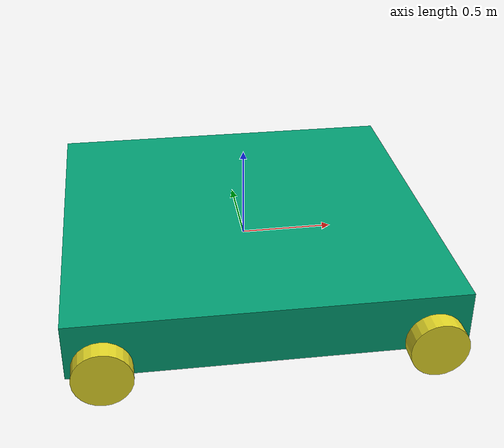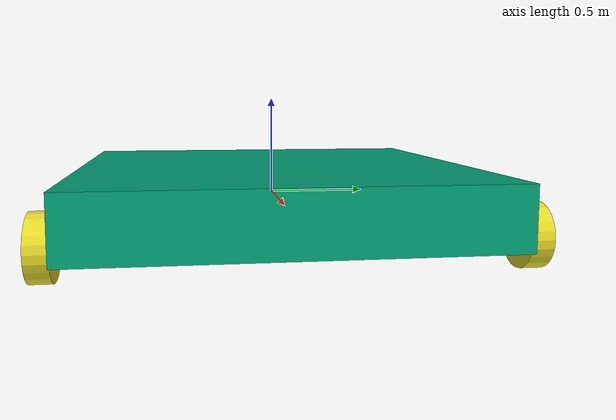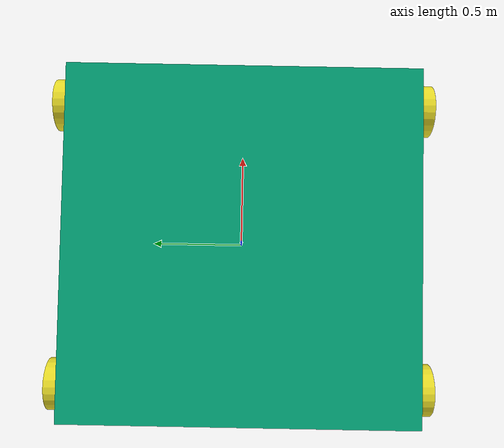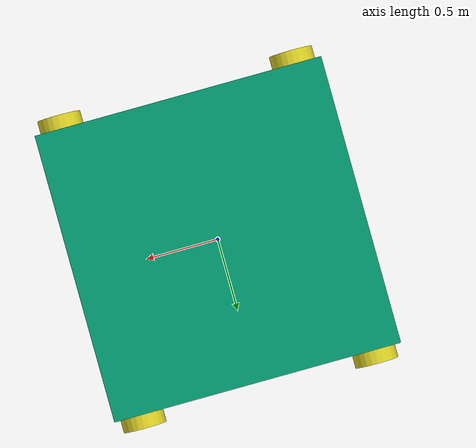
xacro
<?xml version="1.0"?>

<robot name="differential_drive_robot" xmlns:xacro="http://www.ros.org/wiki/xacro">

<!-- Body dimensions -->
<xacro:property name="body_link_x_dim" value="2.0"/>
<xacro:property name="body_link_y_dim" value="2.0"/>
<xacro:property name="body_link_z_dim" value="0.3"/>

<!-- Wheel dimensions -->
<xacro:property name="wheel_link_radius" value="0.15"/>
<xacro:property name="wheel_link_length" value="0.1"/>
<xacro:property name="wheel_link_z_location" value="-0.1"/>

<!-- Material Density -->
<xacro:property name="body_density" value="20.0"/>
<xacro:property name="wheel_density" value="20.0"/>

<!-- Pi Constant -->
<xacro:property name="pi_const" value="3.141592265"/>

<!-- Robot body and wheel mass -->
<xacro:property name="body_mass" value="${body_density*body_link_x_dim*body_link_y_dim*body_link_z_dim}"/>
<xacro:property name="wheel_mass" value="${wheel_density*pi_const*wheel_link_radius*wheel_link_radius*wheel_link_length}"/>

<!-- Moments of inertial of the wheel -->
<xacro:property name="Iz_wheel" value="${0.5*wheel_mass*wheel_link_radius*wheel_link_radius}"/>
<xacro:property name="I_wheel" value="${(1.0/12.0)*wheel_mass*(3*wheel_link_radius*wheel_link_radius+wheel_link_length*wheel_link_length)}"/>

<!-- macros -->

<xacro:macro name="inertia_wheel">
    <inertial>
        <origin rpy="0 0 0" xyz="0 0 0"/>
        <mass value="${wheel_mass}"/>
        <inertia ixx="${I_wheel}" ixy="0.0" ixz="0.0" iyy="${I_wheel}" iyz="0" izz="${Iz_wheel}"/>

    </inertial>

</xacro:macro>

<xacro:include filename="$(find mobile_robot)/model/robot.gazebo"/>

<!-- DEFINING LINKS AND JOINTS -->

<link name="base_footprint">
</link>
<joint name="base_joint" type="fixed">
    <parent link="base_footprint"/>
    <child link="base_link"/>
</joint>

<link name="base_link">
</link>

<joint name = "chassis_joint" type="fixed">
    <parent link="base_link"/>
    <child link="chassis_link"/>
</joint>

<!-- Body Link of Robot -->

<link name="chassis_link">
    <visual>
        <geometry>
            <box size="${body_link_x_dim} ${body_link_y_dim} ${body_link_z_dim}" />
        </geometry>
        <origin rpy="0 0 0" xyz="0 0 0"/>
    </visual>

    <collision>
        <geometry>
            <box size="${body_link_x_dim} ${body_link_y_dim} ${body_link_z_dim}" />
        </geometry>
        <origin rpy="0 0 0" xyz="0 0 0"/>

    </collision>

    <inertial>
        <origin rpy="0 0 0" xyz="0 0 0"/>
        <mass value="${body_mass}"/>
        <inertia
        ixx="${(1/12)*body_mass*(body_link_y_dim+body_link_z_dim*body_link_z_dim)}"
        ixy="0"
        ixz="0"
        iyy="${(1/12)*body_mass*(body_link_x_dim*body_link_x_dim+body_link_z_dim*body_link_z_dim)}"
        iyz="0"
        izz="${(1/12)*body_mass*(body_link_y_dim*body_link_y_dim+body_link_x_dim*body_link_x_dim)}"/>
    </inertial>
</link>

<!-- Back Right Wheel of Robot & Joint -->

<joint name="wheel1_joint" type="continuous">
    <parent link="base_link"/>
    <child link="wheel1_link"/>
    <origin xyz="${-body_link_x_dim/2+1.2*wheel_link_radius} ${-body_link_y_dim/2-wheel_link_length/2} ${wheel_link_z_location}" rpy="0 0 0"/>
    <axis xyz="0 1 0"/>
    <limit effort="1000" velocity="1000"/>
    <dynamics damping="1.0" friction="1.0"/>
</joint>

<link name="wheel1_link">
    <visual>
        <origin rpy="1.570795 0 0" xyz="0 0 0"/>
        <geometry>
            <cylinder length="${wheel_link_length}" radius="${wheel_link_radius}"/>
        </geometry>
    </visual>

    <collision>
        <origin rpy="1.570795 0 0" xyz="0 0 0"/>
        <geometry>
            <cylinder length="${wheel_link_length}" radius="${wheel_link_radius}"/>
        </geometry>
    </collision>

    <xacro:inertia_wheel />
</link>

<!-- Back Left Wheel of Robot & Joint -->

<joint name="wheel2_joint" type="continuous">
    <parent link="base_link"/>
    <child link="wheel2_link"/>
    <origin xyz="${-body_link_x_dim/2+1.2*wheel_link_radius} ${body_link_y_dim/2+wheel_link_length/2} ${wheel_link_z_location}" rpy="0 0 0"/>
    <axis xyz="0 1 0"/>
    <limit effort="1000" velocity="1000"/>
    <dynamics damping="1.0" friction="1.0"/>
</joint>

<link name="wheel2_link">
    <visual>
        <origin rpy="1.570795 0 0" xyz="0 0 0"/>
        <geometry>
            <cylinder length="${wheel_link_length}" radius="${wheel_link_radius}"/>
        </geometry>
    </visual>

    <collision>
        <origin rpy="1.570795 0 0" xyz="0 0 0"/>
        <geometry>
            <cylinder length="${wheel_link_length}" radius="${wheel_link_radius}"/>
        </geometry>
    </collision>

    <xacro:inertia_wheel />
</link>

<!-- Front Right Wheel of Robot & Joint -->

<joint name="wheel3_joint" type="continuous">
    <parent link="base_link"/>
    <child link="wheel3_link"/>
    <origin xyz="${body_link_x_dim/2-1.2*wheel_link_radius} ${-body_link_y_dim/2-wheel_link_length/2} ${wheel_link_z_location}" rpy="0 0 0"/>
    <axis xyz="0 1 0"/>
    <limit effort="1000" velocity="1000"/>
    <dynamics damping="1.0" friction="1.0"/>
</joint>

<link name="wheel3_link">
    <visual>
        <origin rpy="1.570795 0 0" xyz="0 0 0"/>
        <geometry>
            <cylinder length="${wheel_link_length}" radius="${wheel_link_radius}"/>
        </geometry>
    </visual>

    <collision>
        <origin rpy="1.570795 0 0" xyz="0 0 0"/>
        <geometry>
            <cylinder length="${wheel_link_length}" radius="${wheel_link_radius}"/>
        </geometry>
    </collision>

    <xacro:inertia_wheel />
</link>

<!-- Front Left Wheel of Robot & Joint -->

<joint name="wheel4_joint" type="continuous">
    <parent link="base_link"/>
    <child link="wheel4_link"/>
    <origin xyz="${body_link_x_dim/2-1.2*wheel_link_radius} ${body_link_y_dim/2+wheel_link_length/2} ${wheel_link_z_location}" rpy="0 0 0"/>
    <axis xyz="0 1 0"/>
    <limit effort="1000" velocity="1000"/>
    <dynamics damping="1.0" friction="1.0"/>
</joint>

<link name="wheel4_link">
    <visual>
        <origin rpy="1.570795 0 0" xyz="0 0 0"/>
        <geometry>
            <cylinder length="${wheel_link_length}" radius="${wheel_link_radius}"/>
        </geometry>
    </visual>

    <collision>
        <origin rpy="1.570795 0 0" xyz="0 0 0"/>
        <geometry>
            <cylinder length="${wheel_link_length}" radius="${wheel_link_radius}"/>
        </geometry>
    </collision>

    <xacro:inertia_wheel />
</link>

</robot>
